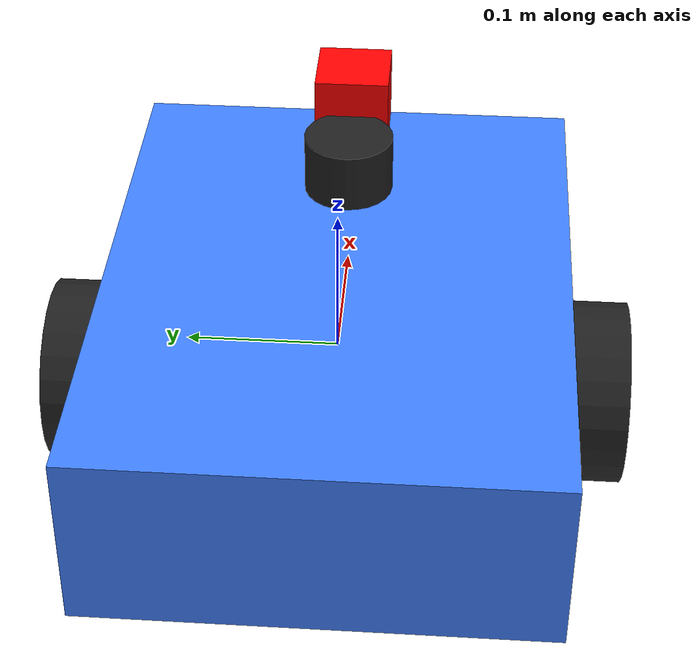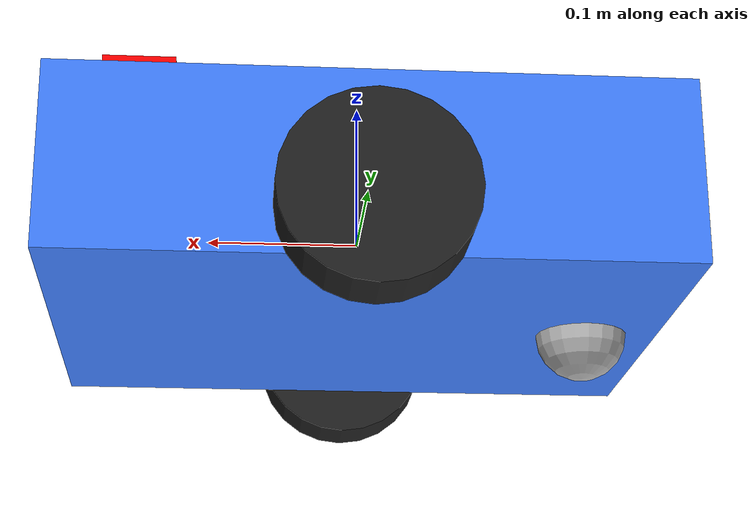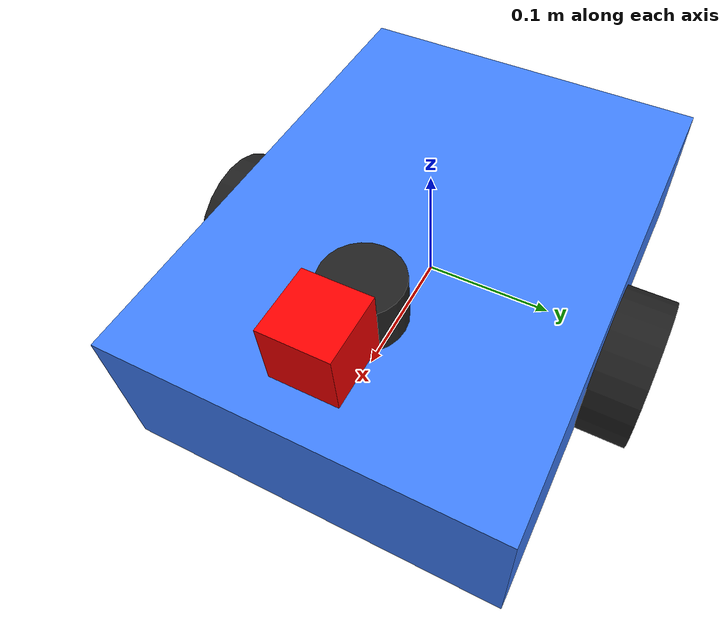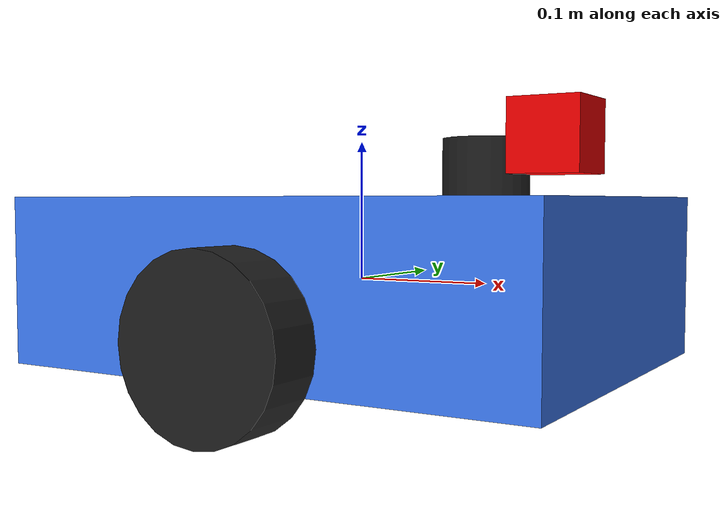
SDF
<sdf version='1.11'>
  <model name='slam_bot'>
    <link name='base_link'>
      <inertial>
        <pose>0.001949317738791424 0 0.0017153996101364529 0 0 0</pose>
        <mass>5.129999999999999</mass>
        <inertia>
          <ixx>0.1009069044834308</ixx>
          <ixy>0</ixy>
          <ixz>-0.001022846003898636</ixz>
          <iyy>0.1023374113060429</iyy>
          <iyz>0</iyz>
          <izz>0.1015605068226121</izz>
        </inertia>
      </inertial>
      <collision name='base_link_collision'>
        <pose>0 0 0 0 0 0</pose>
        <geometry>
          <box>
            <size>0.40000000000000002 0.29999999999999999 0.12</size>
          </box>
        </geometry>
      </collision>
      <collision name='base_link_fixed_joint_lump__lidar_link_collision_1'>
        <pose>0.10000000000000001 0 0.080000000000000002 0 0 0</pose>
        <geometry>
          <cylinder>
            <length>0.040000000000000001</length>
            <radius>0.029999999999999999</radius>
          </cylinder>
        </geometry>
        <surface>
          <contact>
            <ode/>
          </contact>
          <friction>
            <ode/>
          </friction>
        </surface>
      </collision>
      <visual name='base_link_visual'>
        <pose>0 0 0 0 0 0</pose>
        <geometry>
          <box>
            <size>0.40000000000000002 0.29999999999999999 0.12</size>
          </box>
        </geometry>
        <material>
          <diffuse>0.25 0.5 1 1</diffuse>
          <ambient>0.25 0.5 1 1</ambient>
        </material>
      </visual>
      <visual name='base_link_fixed_joint_lump__camera_link_visual_1'>
        <pose>0.14999999999999999 0 0.10000000000000001 0 0 0</pose>
        <geometry>
          <box>
            <size>0.050000000000000003 0.050000000000000003 0.050000000000000003</size>
          </box>
        </geometry>
        <material>
          <diffuse>1 0 0 1</diffuse>
          <ambient>1 0 0 1</ambient>
        </material>
      </visual>
      <visual name='base_link_fixed_joint_lump__caster_link_visual_2'>
        <pose>-0.14999999999999999 0 -0.059999999999999998 0 0 0</pose>
        <geometry>
          <sphere>
            <radius>0.029999999999999999</radius>
          </sphere>
        </geometry>
      </visual>
      <visual name='base_link_fixed_joint_lump__imu_link_visual_3'>
        <pose>0 0 0.040000000000000001 0 0 0</pose>
        <geometry>
          <box>
            <size>0.029999999999999999 0.029999999999999999 0.02</size>
          </box>
        </geometry>
        <material>
          <diffuse>0 1 0 1</diffuse>
          <ambient>0 1 0 1</ambient>
        </material>
      </visual>
      <visual name='base_link_fixed_joint_lump__lidar_link_visual_4'>
        <pose>0.10000000000000001 0 0.080000000000000002 0 0 0</pose>
        <geometry>
          <cylinder>
            <length>0.040000000000000001</length>
            <radius>0.029999999999999999</radius>
          </cylinder>
        </geometry>
        <material>
          <diffuse>0.125 0.125 0.125 1</diffuse>
          <ambient>0.125 0.125 0.125 1</ambient>
        </material>
      </visual>
      <sensor name='front_camera' type='camera'>
        <update_rate>30</update_rate>
        <always_on>true</always_on>
        <visualize>true</visualize>
        <topic>/camera/image_raw</topic>
        <camera>
          <horizontal_fov>1.3962634</horizontal_fov>
          <image>
            <width>640</width>
            <height>480</height>
            <format>R8G8B8</format>
          </image>
          <clip>
            <near>0.050000000000000003</near>
            <far>100</far>
          </clip>
        </camera>
        <pose>0.14999999999999999 0 0.10000000000000001 0 0 0</pose>
      </sensor>
      <sensor name='imu_sensor' type='imu'>
        <always_on>true</always_on>
        <update_rate>100</update_rate>
        <topic>/imu/data</topic>
        <pose>0 0 0.040000000000000001 0 0 0</pose>
        <imu/>
      </sensor>
      <sensor name='lidar_sensor' type='lidar'>
        <always_on>true</always_on>
        <update_rate>10</update_rate>
        <visualize>true</visualize>
        <topic>/scan</topic>
        <ray>
          <scan>
            <horizontal>
              <samples>720</samples>
              <resolution>1</resolution>
              <min_angle>-3.1415899999999999</min_angle>
              <max_angle>3.1415899999999999</max_angle>
            </horizontal>
          </scan>
          <range>
            <min>0.12</min>
            <max>15</max>
            <resolution>0.01</resolution>
          </range>
        </ray>
        <pose>0.10000000000000001 0 0.080000000000000002 0 0 0</pose>
      </sensor>
    </link>
    <joint name='left_wheel_joint' type='revolute'>
      <pose relative_to='base_link'>0 0.17000000000000001 -0.029999999999999999 1.5708 0 0</pose>
      <parent>base_link</parent>
      <child>left_wheel_link</child>
      <axis>
        <xyz>0 0 1</xyz>
        <limit>
          <lower>-inf</lower>
          <upper>inf</upper>
        </limit>
        <dynamics>
          <spring_reference>0</spring_reference>
          <spring_stiffness>0</spring_stiffness>
        </dynamics>
      </axis>
    </joint>
    <link name='left_wheel_link'>
      <pose relative_to='left_wheel_joint'>0 0 0 0 0 0</pose>
      <inertial>
        <pose>0 0 0 0 0 0</pose>
        <mass>0.5</mass>
        <inertia>
          <ixx>0.001</ixx>
          <ixy>0</ixy>
          <ixz>0</ixz>
          <iyy>0.001</iyy>
          <iyz>0</iyz>
          <izz>0.001</izz>
        </inertia>
      </inertial>
      <collision name='left_wheel_link_collision'>
        <pose>0 0 0 0 0 0</pose>
        <geometry>
          <cylinder>
            <length>0.040000000000000001</length>
            <radius>0.059999999999999998</radius>
          </cylinder>
        </geometry>
      </collision>
      <visual name='left_wheel_link_visual'>
        <pose>0 0 0 0 0 0</pose>
        <geometry>
          <cylinder>
            <length>0.040000000000000001</length>
            <radius>0.059999999999999998</radius>
          </cylinder>
        </geometry>
        <material>
          <diffuse>0.125 0.125 0.125 1</diffuse>
          <ambient>0.125 0.125 0.125 1</ambient>
        </material>
      </visual>
    </link>
    <joint name='right_wheel_joint' type='revolute'>
      <pose relative_to='base_link'>0 -0.17000000000000001 -0.029999999999999999 1.5708 0 0</pose>
      <parent>base_link</parent>
      <child>right_wheel_link</child>
      <axis>
        <xyz>0 0 1</xyz>
        <limit>
          <lower>-inf</lower>
          <upper>inf</upper>
        </limit>
        <dynamics>
          <spring_reference>0</spring_reference>
          <spring_stiffness>0</spring_stiffness>
        </dynamics>
      </axis>
    </joint>
    <link name='right_wheel_link'>
      <pose relative_to='right_wheel_joint'>0 0 0 0 0 0</pose>
      <inertial>
        <pose>0 0 0 0 0 0</pose>
        <mass>0.5</mass>
        <inertia>
          <ixx>0.001</ixx>
          <ixy>0</ixy>
          <ixz>0</ixz>
          <iyy>0.001</iyy>
          <iyz>0</iyz>
          <izz>0.001</izz>
        </inertia>
      </inertial>
      <collision name='right_wheel_link_collision'>
        <pose>0 0 0 0 0 0</pose>
        <geometry>
          <cylinder>
            <length>0.040000000000000001</length>
            <radius>0.059999999999999998</radius>
          </cylinder>
        </geometry>
      </collision>
      <visual name='right_wheel_link_visual'>
        <pose>0 0 0 0 0 0</pose>
        <geometry>
          <cylinder>
            <length>0.040000000000000001</length>
            <radius>0.059999999999999998</radius>
          </cylinder>
        </geometry>
        <material>
          <diffuse>0.125 0.125 0.125 1</diffuse>
          <ambient>0.125 0.125 0.125 1</ambient>
        </material>
      </visual>
    </link>
    <frame name='camera_joint' attached_to='base_link'>
      <pose>0.14999999999999999 0 0.10000000000000001 0 0 0</pose>
    </frame>
    <frame name='camera_link' attached_to='camera_joint'>
      <pose>0 0 0 0 0 0</pose>
    </frame>
    <frame name='caster_joint' attached_to='base_link'>
      <pose>-0.14999999999999999 0 -0.059999999999999998 0 0 0</pose>
    </frame>
    <frame name='caster_link' attached_to='caster_joint'>
      <pose>0 0 0 0 0 0</pose>
    </frame>
    <frame name='imu_joint' attached_to='base_link'>
      <pose>0 0 0.040000000000000001 0 0 0</pose>
    </frame>
    <frame name='imu_link' attached_to='imu_joint'>
      <pose>0 0 0 0 0 0</pose>
    </frame>
    <frame name='lidar_joint' attached_to='base_link'>
      <pose>0.10000000000000001 0 0.080000000000000002 0 0 0</pose>
    </frame>
    <frame name='lidar_link' attached_to='lidar_joint'>
      <pose>0 0 0 0 0 0</pose>
    </frame>
  </model>
</sdf>
